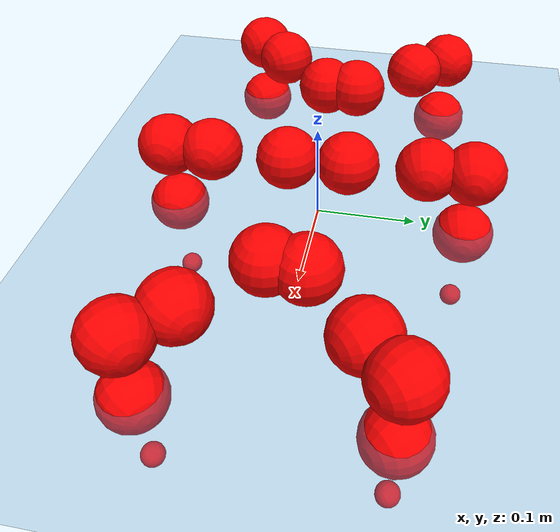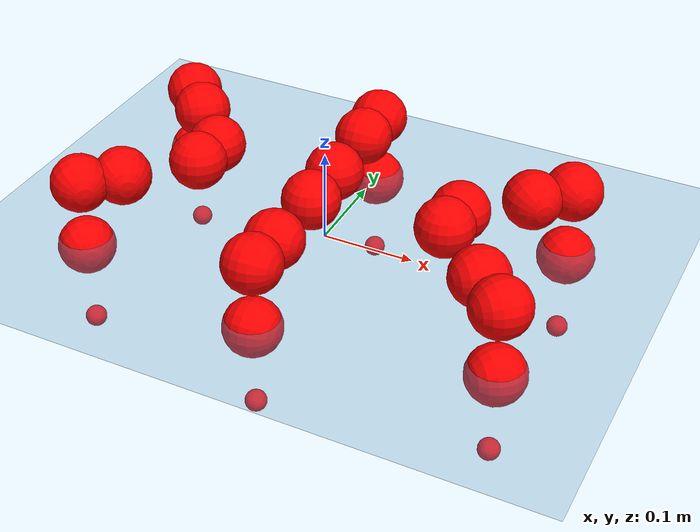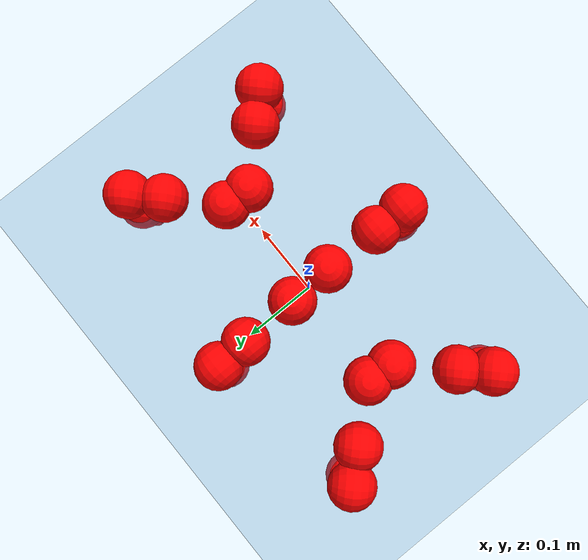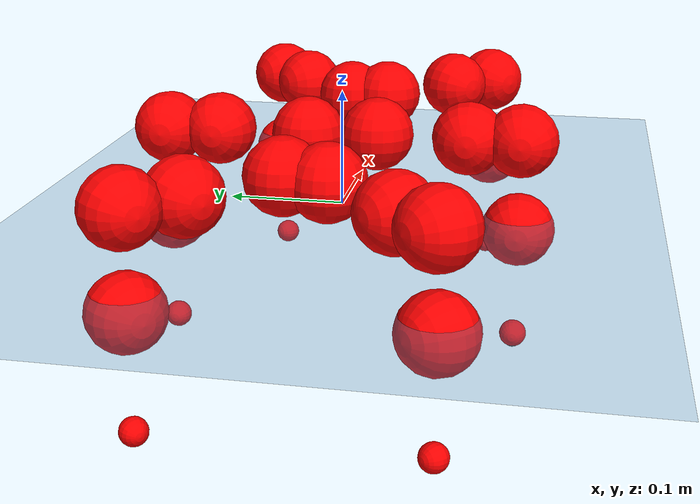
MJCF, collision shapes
<mujoco model="Golem">
  <compiler angle="radian" assetdir="assets" balanceinertia="true" inertiafromgeom="false"/>

  <option timestep="0.005" density="1.2" viscosity="2e-05"/>

  <size nkey="1"/>

  <visual>
    <quality shadowsize="8192"/>
    <map shadowclip="0.5"/>
  </visual>

  <default>
    <default class="/">
      <joint armature="0.01" damping="0.01" frictionloss="0.01"/>
      <geom contype="0" conaffinity="0" group="1" solref="-1000 -80"/>
      <site size="0.01 0.005 0.005" group="5"/>
      <general forcelimited="true" biastype="affine" gainprm="25" biasprm="0 -25 -0.5"/>
      <default class="visual">
        <geom type="mesh" group="2"/>
      </default>
      <default class="collision">
        <geom group="3"/>
      </default>
      <default class="foot">
        <geom size="0.01 0 0" condim="6" group="4" priority="1" solimp="0.015 1 0.01"/>
      </default>
      <default class="reward_collision_sphere">
        <geom group="5" rgba="1 0 0 1"/>
      </default>
    </default>
  </default>

  <asset>
    <texture type="skybox" colorspace="auto" name="//unnamed_texture_0" builtin="gradient" rgb1="0.95 0.95 0.95" rgb2="0.95 0.95 0.95" width="100" height="600"/>
    <texture type="2d" colorspace="auto" name="texplane" builtin="checker" rgb1="0.345 0.575 0.748" rgb2="0.345 0.575 0.748" markrgb="1 1 1" width="512" height="512"/>
    <material name="MatPlane" class="/" texture="texplane" texuniform="true" texrepeat="2 2" specular="0.9"/>
    <mesh name="body" class="/" file="body.stl" scale="0.001 0.001 0.001"/>
    <mesh name="coxa" class="/" file="coxa.stl" scale="0.001 0.001 0.001"/>
    <mesh name="femur" class="/" file="femur.stl" scale="0.001 0.001 0.001"/>
    <mesh name="tibia" class="/" file="tibia.stl" scale="0.001 0.001 0.001"/>
    <mesh name="tarsus" class="/" file="tarsus.stl" scale="0.001 0.001 0.001"/>
  </asset>

  <worldbody>
    <geom name="floor" class="/" size="100 100 0.125" type="plane" group="0" material="MatPlane"/>
    <light name="toplight_shadow" class="/" pos="0 0 5" dir="0.0990148 0.0990148 -0.990148" type="directional" ambient="0.04 0.04 0.04" diffuse="0.55 0.55 0.55" specular="0.12 0.12 0.12"/>
    <light name="toplight_fill" class="/" pos="0 0 5" dir="0.0990148 0.0990148 -0.990148" type="directional" castshadow="false" ambient="0.04 0.04 0.04" diffuse="0.3 0.3 0.3" specular="0.08 0.08 0.08"/>
    <body name="trunk" pos="0.000196699 -0.000217311 -0.000747519" quat="0.999999 0.000580733 -0.000992037 1.24632e-05">
      <inertial pos="-0.000734953 -0.000369834 -0.0034611" quat="1 0.000154422 7.36296e-05 9.02518e-05" mass="1.80963" diaginertia="0.00597116 0.000142392 0.0104478"/>
      <joint name="//unnamed_joint_0" type="free"/>
      <geom name="//unnamed_geom_1" class="/" pos="0 0 0.064646" quat="1 0 0 0" type="mesh" rgba="0.9 0.9 0.9 1" mesh="body"/>
      <site name="imu" class="/" pos="0.127945 0.000446129 0.0995858" size="0.00780081"/>
      <camera name="track" class="/" pos="0 -0.855165 0" quat="0.707107 0.707107 0 0" mode="trackcom"/>
      <camera name="ego_camera" class="/" pos="0.117334 0 0.101009" quat="-0.5 -0.5 0.5 0.5"/>
      <body name="coxa_RR" pos="-0.161728 -0.0350804 0.0642715" quat="0.383585 -9.38202e-05 0.000658003 -0.923505">
        <inertial pos="5.3694e-06 0.000146682 0.00173254" quat="0.999999 -0.000967209 -0.000372441 -0.00131637" mass="0.0970416" diaginertia="0.00606536 0.000144711 0.0106683"/>
        <joint name="coxa_joint_RR" class="/" pos="0 0 0" axis="-0.00616276 0.00202317 -0.999979" range="-3.161 3.09948" armature="0.00774403" damping="0.000709399" frictionloss="0.00779307"/>
        <geom name="//unnamed_geom_2" class="/" type="mesh" rgba="0.2 0.2 0.2 1" mesh="coxa"/>
        <geom name="//unnamed_geom_3" class="reward_collision_sphere" size="0.0312033" pos="-0.0270771 0 0"/>
        <body name="femur_RR" pos="0.0552143 0.00236592 -0.000897459" quat="0.500227 -0.499916 0.50005 0.499807">
          <inertial pos="-0.000393184 -0.000127925 0.000731667" quat="0.999996 -0.0016901 -0.000300174 0.00204762" mass="0.0955486" diaginertia="0.00595291 0.000142509 0.0106656"/>
          <joint name="femur_joint_RR" class="/" pos="0 0 0" axis="0.000119709 0.00139304 -0.999999" range="-3.10166 3.14152" armature="0.00716322" damping="8.02087e-05" frictionloss="0.00818922"/>
          <geom name="//unnamed_geom_4" class="/" type="mesh" rgba="0.9 0.9 0.9 1" mesh="femur"/>
          <geom name="//unnamed_geom_5" class="reward_collision_sphere" size="0.0312033"/>
          <body name="tibia_RR" pos="-0.00143959 -0.0449005 0.00212171" quat="0.000226375 1 8.96282e-05 0.000195704">
            <inertial pos="0.00123239 0.000422825 0.000462225" quat="0.999996 -4.59159e-05 0.00181853 -0.00201093" mass="0.0963979" diaginertia="0.0060607 0.000142554 0.0103115"/>
            <joint name="tibia_joint_RR" class="/" pos="0 0 0" axis="-0.000681427 0.00909078 0.999958" range="-3.09906 3.14289" armature="0.00733372" damping="0" frictionloss="0.00781069"/>
            <geom name="//unnamed_geom_6" class="/" type="mesh" rgba="0.2 0.2 0.2 1" mesh="tibia"/>
            <geom name="//unnamed_geom_7" class="reward_collision_sphere" size="0.0312033"/>
            <body name="tarsus_RR" pos="0.0772698 0.000583837 -0.00167974" quat="1 9.75559e-05 0.000118966 -0.000398335">
              <inertial pos="0.0550514 0.000717321 -0.000560664" quat="0.500116 0.499908 0.500017 0.499959" mass="0.0944405" diaginertia="0.00593271 0.000142556 0.0104916"/>
              <joint name="tarsus_joint_RR" class="/" pos="0 0 0" axis="0.00340883 -0.00280956 0.99999" range="-3.12531 3.13724" armature="0.0082053" damping="0" frictionloss="0.00769032"/>
              <geom name="//unnamed_geom_8" class="/" type="mesh" rgba="0.9 0.9 0.9 1" mesh="tarsus"/>
              <geom name="foot_1" class="foot" size="0.00738098" pos="0.101088 0 0" quat="0 -0.707107 0 0.707107"/>
              <geom name="//unnamed_geom_10" class="reward_collision_sphere" size="0.0312033"/>
              <geom name="//unnamed_geom_11" class="reward_collision_sphere" size="0.0117012" pos="0.0970261 0 0"/>
              <site name="foot_1" class="foot" pos="0.101088 0 0" quat="0 -0.707107 0 0.707107" size="0.00780081"/>
            </body>
          </body>
        </body>
      </body>
      <body name="coxa_RM" pos="-0.000178914 -0.0572939 0.0650125" quat="0.707221 0.000850422 0.000303498 -0.706992">
        <inertial pos="-0.00013261 -0.00158919 0.000428282" quat="0.999996 -0.000425441 0.000597306 -0.00261105" mass="0.0940626" diaginertia="0.00590318 0.000143981 0.0106474"/>
        <joint name="coxa_joint_RM" class="/" pos="0 0 0" axis="-0.00512062 -0.00862214 -0.99995" range="-3.14217 3.16513" armature="0.00865295" damping="0.000879" frictionloss="0.00753026"/>
        <geom name="//unnamed_geom_12" class="/" type="mesh" rgba="0.2 0.2 0.2 1" mesh="coxa"/>
        <geom name="//unnamed_geom_13" class="reward_collision_sphere" size="0.0312033" pos="-0.0270771 0 0"/>
        <body name="femur_RM" pos="0.0510424 -0.000148414 0.000167243" quat="0.500236 -0.499999 0.499899 0.499866">
          <inertial pos="0.000215113 -0.000892757 0.000182152" quat="0.999993 -0.00152642 -0.000707581 -0.0032556" mass="0.0950605" diaginertia="0.00589578 0.000146021 0.0107388"/>
          <joint name="femur_joint_RM" class="/" pos="0 0 0" axis="-0.000419063 0.00408688 -0.999992" range="-3.12877 3.13609" armature="0.00755153" damping="0.00285791" frictionloss="0.00798169"/>
          <geom name="//unnamed_geom_14" class="/" type="mesh" rgba="0.9 0.9 0.9 1" mesh="femur"/>
          <geom name="//unnamed_geom_15" class="reward_collision_sphere" size="0.0312033"/>
          <body name="tibia_RM" pos="-0.000221328 -0.0444212 -7.78788e-05" quat="8.39515e-05 1 -0.000137803 0.000169571">
            <inertial pos="-0.000815752 -0.00129332 -0.00165948" quat="0.999972 0.00615449 0.00186664 0.00389534" mass="0.094372" diaginertia="0.00612438 0.000143653 0.0106924"/>
            <joint name="tibia_joint_RM" class="/" pos="0 0 0" axis="0.00154939 0.000953038 0.999998" range="-3.14556 3.15466" armature="0.00846496" damping="0.00029598" frictionloss="0.00866534"/>
            <geom name="//unnamed_geom_16" class="/" type="mesh" rgba="0.2 0.2 0.2 1" mesh="tibia"/>
            <geom name="//unnamed_geom_17" class="reward_collision_sphere" size="0.0312033"/>
            <body name="tarsus_RM" pos="0.077746 0.000640932 0.00203823" quat="1 -0.000147314 -5.65299e-05 -0.000128738">
              <inertial pos="0.0546925 0.00158666 0.000130765" quat="0.499984 0.500778 0.497957 0.501275" mass="0.094353" diaginertia="0.00594034 0.000141281 0.0104594"/>
              <joint name="tarsus_joint_RM" class="/" pos="0 0 0" axis="0.000132305 -0.000822874 1" range="-3.09859 3.12697" armature="0.00871034" damping="0" frictionloss="0.00795121"/>
              <geom name="//unnamed_geom_18" class="/" type="mesh" rgba="0.9 0.9 0.9 1" mesh="tarsus"/>
              <geom name="foot_2" class="foot" size="0.00840611" pos="0.101088 0 0" quat="0 -0.707107 0 0.707107"/>
              <geom name="//unnamed_geom_20" class="reward_collision_sphere" size="0.0312033"/>
              <geom name="//unnamed_geom_21" class="reward_collision_sphere" size="0.0117012" pos="0.0970261 0 0"/>
              <site name="foot_2" class="foot" pos="0.101088 0 0" quat="0 -0.707107 0 0.707107" size="0.00780081"/>
            </body>
          </body>
        </body>
      </body>
      <body name="coxa_RF" pos="0.160403 -0.0360282 0.066838" quat="0.924133 6.24276e-05 -0.000245861 -0.38207">
        <inertial pos="-0.000553022 -0.00256926 0.000625404" quat="0.999994 0.000990847 0.00179748 -0.00280229" mass="0.0961922" diaginertia="0.00604334 0.000142253 0.0105207"/>
        <joint name="coxa_joint_RF" class="/" pos="0 0 0" axis="0.0038719 -0.000524248 -0.999992" range="-3.12175 3.17669" armature="0.00777626" damping="0" frictionloss="0.0076879"/>
        <geom name="//unnamed_geom_22" class="/" type="mesh" rgba="0.2 0.2 0.2 1" mesh="coxa"/>
        <geom name="//unnamed_geom_23" class="reward_collision_sphere" size="0.0312033" pos="-0.0270771 0 0"/>
        <body name="femur_RF" pos="0.0563317 0.000809905 -0.00162407" quat="0.500419 -0.500003 0.500313 0.499264">
          <inertial pos="0.000468677 -0.00115112 0.00196439" quat="0.999948 0.00208804 0.00957843 -0.00269384" mass="0.0962489" diaginertia="0.00600042 0.000139792 0.0106294"/>
          <joint name="femur_joint_RF" class="/" pos="0 0 0" axis="-0.000603812 -0.00447973 -0.99999" stiffness="0.000719354" range="-3.12791 3.13786" armature="0.00779092" damping="0" frictionloss="0.00708204"/>
          <geom name="//unnamed_geom_24" class="/" type="mesh" rgba="0.9 0.9 0.9 1" mesh="femur"/>
          <geom name="//unnamed_geom_25" class="reward_collision_sphere" size="0.0312033"/>
          <body name="tibia_RF" pos="0.00069428 -0.0480341 0.000187582" quat="0.00016342 1 -0.000201809 -0.000428325">
            <inertial pos="-2.63213e-05 0.000110896 0.000961459" quat="0.999997 0.000225924 -0.000821269 0.0021598" mass="0.0949892" diaginertia="0.0059964 0.000144868 0.0107071"/>
            <joint name="tibia_joint_RF" class="/" pos="0 0 0" axis="-0.00396805 -0.00527799 0.999978" range="-3.12629 3.14445" armature="0.00814807" damping="0.00722798" frictionloss="0.00782651"/>
            <geom name="//unnamed_geom_26" class="/" type="mesh" rgba="0.2 0.2 0.2 1" mesh="tibia"/>
            <geom name="//unnamed_geom_27" class="reward_collision_sphere" size="0.0312033"/>
            <body name="tarsus_RF" pos="0.0790428 0.00208425 -0.000144064" quat="1 -0.000421608 -0.000149376 -0.000853144">
              <inertial pos="0.05213 -0.000352044 0.00224649" quat="0.501599 0.498519 0.502524 0.49734" mass="0.0928338" diaginertia="0.00597886 0.000139315 0.0103157"/>
              <joint name="tarsus_joint_RF" class="/" pos="0 0 0" axis="-0.0119084 -0.00437696 0.99992" range="-3.09839 3.121" armature="0.00775506" damping="0" frictionloss="0.00797561"/>
              <geom name="//unnamed_geom_28" class="/" type="mesh" rgba="0.9 0.9 0.9 1" mesh="tarsus"/>
              <geom name="foot_3" class="foot" size="0.00768106" pos="0.101088 0 0" quat="0 -0.707107 0 0.707107"/>
              <geom name="//unnamed_geom_30" class="reward_collision_sphere" size="0.0312033"/>
              <geom name="//unnamed_geom_31" class="reward_collision_sphere" size="0.0117012" pos="0.0970261 0 0"/>
              <site name="foot_3" class="foot" pos="0.101088 0 0" quat="0 -0.707107 0 0.707107" size="0.00780081"/>
            </body>
          </body>
        </body>
      </body>
      <body name="coxa_LR" pos="-0.158824 0.0381621 0.0664266" quat="0.382326 -0.000442985 0.000778532 0.924027">
        <inertial pos="0.00212887 -3.99678e-05 0.00096678" quat="0.999987 0.00273079 -0.00172258 0.00398811" mass="0.0935903" diaginertia="0.00596304 0.000141224 0.010389"/>
        <joint name="coxa_joint_LR" class="/" pos="0 0 0" axis="-0.00808979 -0.00135794 -0.999966" range="-3.12842 3.14897" armature="0.00814084" damping="0.00897027" frictionloss="0.00790911"/>
        <geom name="//unnamed_geom_32" class="/" type="mesh" rgba="0.2 0.2 0.2 1" mesh="coxa"/>
        <geom name="//unnamed_geom_33" class="reward_collision_sphere" size="0.0312033" pos="-0.0270771 0 0"/>
        <body name="femur_LR" pos="0.0545787 -0.0041153 -0.00226757" quat="0.50074 -0.499434 0.499582 0.500243">
          <inertial pos="-0.00128523 -0.000329983 0.000705294" quat="0.999999 -3.73857e-05 -0.000754197 0.00103687" mass="0.0943191" diaginertia="0.00595674 0.000141707 0.0103592"/>
          <joint name="femur_joint_LR" class="/" pos="0 0 0" axis="-0.00151485 -0.00062631 0.999999" stiffness="0.000548312" range="-3.15051 3.18534" armature="0.00762849" damping="0.00475534" frictionloss="0.00866867"/>
          <geom name="//unnamed_geom_34" class="/" type="mesh" rgba="0.9 0.9 0.9 1" mesh="femur"/>
          <geom name="//unnamed_geom_35" class="reward_collision_sphere" size="0.0312033"/>
          <body name="tibia_LR" pos="0.000606269 -0.0484863 -0.00296812" quat="-1.08354e-05 1 7.16786e-05 0.000111528">
            <inertial pos="-0.00104234 -0.000567212 0.00072003" quat="0.99999 0.00166146 0.00395878 -0.000797894" mass="0.0957436" diaginertia="0.00601816 0.000144657 0.0105569"/>
            <joint name="tibia_joint_LR" class="/" pos="0 0 0" axis="0.0011549 2.19381e-05 -0.999999" range="-3.15799 3.10562" armature="0.00701731" damping="0" frictionloss="0.00795822"/>
            <geom name="//unnamed_geom_36" class="/" type="mesh" rgba="0.2 0.2 0.2 1" mesh="tibia"/>
            <geom name="//unnamed_geom_37" class="reward_collision_sphere" size="0.0312033"/>
            <body name="tarsus_LR" pos="0.0796322 0.000371183 -0.000266029" quat="1 -0.000452919 0.000202386 -9.21039e-05">
              <inertial pos="0.0556285 0.000720584 0.00054073" quat="0.500492 0.499601 0.499459 0.500446" mass="0.0943374" diaginertia="0.00595097 0.00014366 0.0104316"/>
              <joint name="tarsus_joint_LR" class="/" pos="0 0 0" axis="-0.00192069 -0.000323401 -0.999998" range="-3.10043 3.13462" armature="0.00780375" damping="0" frictionloss="0.00784144"/>
              <geom name="//unnamed_geom_38" class="/" type="mesh" rgba="0.9 0.9 0.9 1" mesh="tarsus"/>
              <geom name="foot_4" class="foot" size="0.00732033" pos="0.101088 0 0" quat="0.707107 0 -0.707107 0"/>
              <geom name="//unnamed_geom_40" class="reward_collision_sphere" size="0.0312033"/>
              <geom name="//unnamed_geom_41" class="reward_collision_sphere" size="0.0117012" pos="0.0970261 0 0"/>
              <site name="foot_4" class="foot" pos="0.101088 0 0" quat="0.707107 0 -0.707107 0" size="0.00780081"/>
            </body>
          </body>
        </body>
      </body>
      <body name="coxa_LM" pos="-0.00356455 0.0566037 0.0640167" quat="0.706334 -0.000531836 0.000676482 0.707878">
        <inertial pos="0.00115639 -9.18223e-05 0.00102769" quat="0.999998 -0.00063207 -0.000608405 0.00197635" mass="0.0989419" diaginertia="0.0063338 0.000146972 0.0107197"/>
        <joint name="coxa_joint_LM" class="/" pos="0 0 0" axis="-0.00228339 0.000630137 -0.999997" stiffness="0.00480838" range="-3.16408 3.14659" armature="0.00760371" damping="0.0085159" frictionloss="0.00823033"/>
        <geom name="//unnamed_geom_42" class="/" type="mesh" rgba="0.2 0.2 0.2 1" mesh="coxa"/>
        <geom name="//unnamed_geom_43" class="reward_collision_sphere" size="0.0312033" pos="-0.0270771 0 0"/>
        <body name="femur_LM" pos="0.0503351 0.00282679 0.000819284" quat="0.500146 -0.499903 0.500095 0.499855">
          <inertial pos="0.000164415 -0.000588153 0.000111833" quat="1 -0.000162 -1.22294e-05 7.47218e-05" mass="0.0915453" diaginertia="0.00589997 0.000139139 0.0102631"/>
          <joint name="femur_joint_LM" class="/" pos="0 0 0" axis="0.00121959 -0.000243128 0.999999" range="-3.15439 3.12855" armature="0.00796346" damping="0" frictionloss="0.0078786"/>
          <geom name="//unnamed_geom_44" class="/" type="mesh" rgba="0.9 0.9 0.9 1" mesh="femur"/>
          <geom name="//unnamed_geom_45" class="reward_collision_sphere" size="0.0312033"/>
          <body name="tibia_LM" pos="0.000349377 -0.0447806 0.00209631" quat="-9.89723e-05 1 5.8702e-06 2.03657e-05">
            <inertial pos="-0.00207735 0.00065513 0.000171837" quat="1 -7.72796e-05 -0.000265203 0.000104031" mass="0.0957305" diaginertia="0.00586158 0.000142024 0.0105274"/>
            <joint name="tibia_joint_LM" class="/" pos="0 0 0" axis="0.00296727 0.000355918 -0.999996" range="-3.12373 3.13645" armature="0.00791753" damping="0.00369693" frictionloss="0.00788623"/>
            <geom name="//unnamed_geom_46" class="/" type="mesh" rgba="0.2 0.2 0.2 1" mesh="tibia"/>
            <geom name="//unnamed_geom_47" class="reward_collision_sphere" size="0.0312033"/>
            <body name="tarsus_LM" pos="0.0801569 0.000197188 -0.001654" quat="1 -9.27322e-05 -0.000219692 0.000250085">
              <inertial pos="0.0545354 0.000549363 -0.00011367" quat="0.499423 0.498596 0.500613 0.501364" mass="0.0946284" diaginertia="0.00602178 0.000142805 0.0106682"/>
              <joint name="tarsus_joint_LM" class="/" pos="0 0 0" axis="0.00322634 -0.00135076 -0.999994" stiffness="0.00111677" range="-3.15586 3.12417" armature="0.00778407" damping="0.00842736" frictionloss="0.00731613"/>
              <geom name="//unnamed_geom_48" class="/" type="mesh" rgba="0.9 0.9 0.9 1" mesh="tarsus"/>
              <geom name="foot_5" class="foot" size="0.00780644" pos="0.101088 0 0" quat="0.707107 0 -0.707107 0"/>
              <geom name="//unnamed_geom_50" class="reward_collision_sphere" size="0.0312033"/>
              <geom name="//unnamed_geom_51" class="reward_collision_sphere" size="0.0117012" pos="0.0970261 0 0"/>
              <site name="foot_5" class="foot" pos="0.101088 0 0" quat="0.707107 0 -0.707107 0" size="0.00780081"/>
            </body>
          </body>
        </body>
      </body>
      <body name="coxa_LF" pos="0.162305 0.0372102 0.0651387" quat="0.923875 -4.10083e-05 -2.42577e-05 0.382695">
        <inertial pos="-0.000425357 -0.000525226 -0.00019867" quat="0.999993 0.00331133 -0.00131065 0.00134152" mass="0.0936471" diaginertia="0.00592339 0.000138532 0.0103581"/>
        <joint name="coxa_joint_LF" class="/" pos="0 0 0" axis="0.00511102 -0.000145971 -0.999987" range="-3.14878 3.15805" armature="0.00777549" damping="0" frictionloss="0.00762622"/>
        <geom name="//unnamed_geom_52" class="/" type="mesh" rgba="0.2 0.2 0.2 1" mesh="coxa"/>
        <geom name="//unnamed_geom_53" class="reward_collision_sphere" size="0.0312033" pos="-0.0270771 0 0"/>
        <body name="femur_LF" pos="0.052578 -0.00105053 -0.00245946" quat="0.500005 -0.500011 0.499994 0.499991">
          <inertial pos="-7.04828e-05 0.000533176 -0.000258072" quat="0.999936 0.00790467 0.0071042 -0.00383039" mass="0.0952573" diaginertia="0.00608641 0.000140136 0.0105504"/>
          <joint name="femur_joint_LF" class="/" pos="0 0 0" axis="0.00401817 -0.000571822 0.999992" range="-3.13189 3.15275" armature="0.00758761" damping="0" frictionloss="0.00689341"/>
          <geom name="//unnamed_geom_54" class="/" type="mesh" rgba="0.9 0.9 0.9 1" mesh="femur"/>
          <geom name="//unnamed_geom_55" class="reward_collision_sphere" size="0.0312033"/>
          <body name="tibia_LF" pos="-6.40681e-05 -0.0461539 0.000228862" quat="0.000141944 1 -0.000241198 -9.95363e-06">
            <inertial pos="-0.000163912 -0.00062958 0.000346784" quat="0.999997 -0.00184729 -0.00110877 0.0014664" mass="0.0953501" diaginertia="0.00607025 0.000143949 0.0105752"/>
            <joint name="tibia_joint_LF" class="/" pos="0 0 0" axis="-0.00376639 0.000392898 -0.999993" range="-3.18341 3.14756" armature="0.00762498" damping="0.00130656" frictionloss="0.00765047"/>
            <geom name="//unnamed_geom_56" class="/" type="mesh" rgba="0.2 0.2 0.2 1" mesh="tibia"/>
            <geom name="//unnamed_geom_57" class="reward_collision_sphere" size="0.0312033"/>
            <body name="tarsus_LF" pos="0.0801452 -0.000341673 0.000409065" quat="1 -5.67386e-06 1.50709e-05 -8.82813e-06">
              <inertial pos="0.0560816 0.000783976 0.00244064" quat="0.50051 0.49968 0.500332 0.499477" mass="0.0965021" diaginertia="0.0059859 0.000144749 0.0107019"/>
              <joint name="tarsus_joint_LF" class="/" pos="0 0 0" axis="-0.00438214 -0.00464998 -0.99998" stiffness="0.0276191" range="-3.13829 3.13397" armature="0.00784825" damping="0.0273238" frictionloss="0.00789728"/>
              <geom name="//unnamed_geom_58" class="/" type="mesh" rgba="0.9 0.9 0.9 1" mesh="tarsus"/>
              <geom name="foot_6" class="foot" size="0.00790055" pos="0.101088 0 0" quat="0.707107 0 -0.707107 0"/>
              <geom name="//unnamed_geom_60" class="reward_collision_sphere" size="0.0312033"/>
              <geom name="//unnamed_geom_61" class="reward_collision_sphere" size="0.0117012" pos="0.0970261 0 0"/>
              <site name="foot_6" class="foot" pos="0.101088 0 0" quat="0.707107 0 -0.707107 0" size="0.00780081"/>
            </body>
          </body>
        </body>
      </body>
    </body>
  </worldbody>

  <contact>
    <pair class="/" geom1="floor" geom2="foot_1" name="//unnamed_contact_0"/>
    <pair class="/" geom1="floor" geom2="foot_2" name="//unnamed_contact_1"/>
    <pair class="/" geom1="floor" geom2="foot_3" name="//unnamed_contact_2"/>
    <pair class="/" geom1="floor" geom2="foot_4" name="//unnamed_contact_3"/>
    <pair class="/" geom1="floor" geom2="foot_5" name="//unnamed_contact_4"/>
    <pair class="/" geom1="floor" geom2="foot_6" name="//unnamed_contact_5"/>
  </contact>

  <actuator>
    <general name="coxa_joint_RR" class="/" joint="coxa_joint_RR" forcerange="-5.84729 5.84729" gainprm="17.815" biasprm="0 -17.815 -0.384363"/>
    <general name="femur_joint_RR" class="/" joint="femur_joint_RR" forcerange="-5.51728 5.51728" gainprm="17.815" biasprm="0 -17.815 -0.384363"/>
    <general name="tibia_joint_RR" class="/" joint="tibia_joint_RR" forcerange="-5.85685 5.85685" gainprm="17.815" biasprm="0 -17.815 -0.384363"/>
    <general name="tarsus_joint_RR" class="/" joint="tarsus_joint_RR" forcerange="-5.62202 5.62202" gainprm="17.815" biasprm="0 -17.815 -0.384363"/>
    <general name="coxa_joint_RM" class="/" joint="coxa_joint_RM" forcerange="-5.86301 5.86301" gainprm="17.815" biasprm="0 -17.815 -0.384363"/>
    <general name="femur_joint_RM" class="/" joint="femur_joint_RM" forcerange="-5.98664 5.98664" gainprm="17.815" biasprm="0 -17.815 -0.384363"/>
    <general name="tibia_joint_RM" class="/" joint="tibia_joint_RM" forcerange="-5.86094 5.86094" gainprm="17.815" biasprm="0 -17.815 -0.384363"/>
    <general name="tarsus_joint_RM" class="/" joint="tarsus_joint_RM" forcerange="-6.16599 6.16599" gainprm="17.815" biasprm="0 -17.815 -0.384363"/>
    <general name="coxa_joint_RF" class="/" joint="coxa_joint_RF" forcerange="-6.08178 6.08178" gainprm="17.815" biasprm="0 -17.815 -0.384363"/>
    <general name="femur_joint_RF" class="/" joint="femur_joint_RF" forcerange="-5.3047 5.3047" gainprm="17.815" biasprm="0 -17.815 -0.384363"/>
    <general name="tibia_joint_RF" class="/" joint="tibia_joint_RF" forcerange="-5.88643 5.88643" gainprm="17.815" biasprm="0 -17.815 -0.384363"/>
    <general name="tarsus_joint_RF" class="/" joint="tarsus_joint_RF" forcerange="-5.78848 5.78848" gainprm="17.815" biasprm="0 -17.815 -0.384363"/>
    <general name="coxa_joint_LR" class="/" joint="coxa_joint_LR" forcerange="-5.57454 5.57454" gainprm="17.815" biasprm="0 -17.815 -0.384363"/>
    <general name="femur_joint_LR" class="/" joint="femur_joint_LR" forcerange="-5.58548 5.58548" gainprm="17.815" biasprm="0 -17.815 -0.384363"/>
    <general name="tibia_joint_LR" class="/" joint="tibia_joint_LR" forcerange="-5.87479 5.87479" gainprm="17.815" biasprm="0 -17.815 -0.384363"/>
    <general name="tarsus_joint_LR" class="/" joint="tarsus_joint_LR" forcerange="-5.63484 5.63484" gainprm="17.815" biasprm="0 -17.815 -0.384363"/>
    <general name="coxa_joint_LM" class="/" joint="coxa_joint_LM" forcerange="-5.67121 5.67121" gainprm="17.815" biasprm="0 -17.815 -0.384363"/>
    <general name="femur_joint_LM" class="/" joint="femur_joint_LM" forcerange="-5.70478 5.70478" gainprm="17.815" biasprm="0 -17.815 -0.384363"/>
    <general name="tibia_joint_LM" class="/" joint="tibia_joint_LM" forcerange="-5.22956 5.22956" gainprm="17.815" biasprm="0 -17.815 -0.384363"/>
    <general name="tarsus_joint_LM" class="/" joint="tarsus_joint_LM" forcerange="-5.71617 5.71617" gainprm="17.815" biasprm="0 -17.815 -0.384363"/>
    <general name="coxa_joint_LF" class="/" joint="coxa_joint_LF" forcerange="-5.99507 5.99507" gainprm="17.815" biasprm="0 -17.815 -0.384363"/>
    <general name="femur_joint_LF" class="/" joint="femur_joint_LF" forcerange="-6.02568 6.02568" gainprm="17.815" biasprm="0 -17.815 -0.384363"/>
    <general name="tibia_joint_LF" class="/" joint="tibia_joint_LF" forcerange="-5.75867 5.75867" gainprm="17.815" biasprm="0 -17.815 -0.384363"/>
    <general name="tarsus_joint_LF" class="/" joint="tarsus_joint_LF" forcerange="-5.88893 5.88893" gainprm="17.815" biasprm="0 -17.815 -0.384363"/>
  </actuator>

  <sensor>
    <gyro site="imu" name="imu_angular_velocity"/>
    <velocimeter site="imu" name="imu_linear_velocity"/>
    <framelinvel objtype="site" objname="foot_1" name="foot_1_global_linear_velocity"/>
    <framelinvel objtype="site" objname="foot_2" name="foot_2_global_linear_velocity"/>
    <framelinvel objtype="site" objname="foot_3" name="foot_3_global_linear_velocity"/>
    <framelinvel objtype="site" objname="foot_4" name="foot_4_global_linear_velocity"/>
    <framelinvel objtype="site" objname="foot_5" name="foot_5_global_linear_velocity"/>
    <framelinvel objtype="site" objname="foot_6" name="foot_6_global_linear_velocity"/>
  </sensor>

  <keyframe>
    <key name="home" qpos="0 0 0.1457 1 0 0 0 0 0 0 0 0 0 0 0 0 0 0 0 0 0 0 0 0 0 0 0 0 0 0 0"/>
  </keyframe>
</mujoco>
